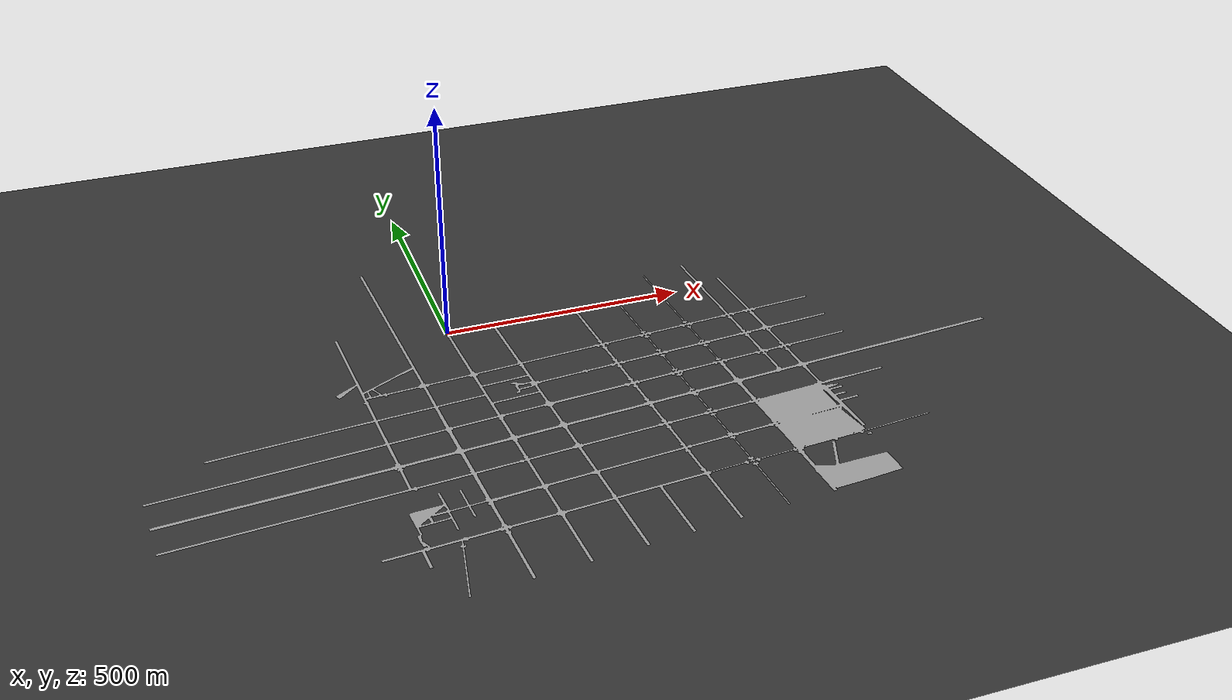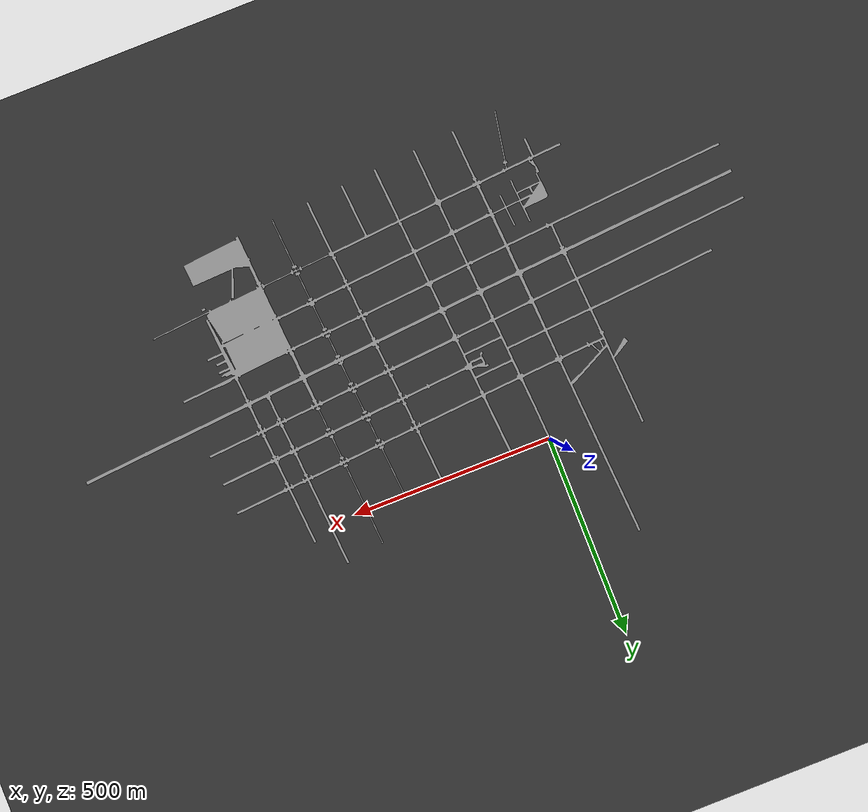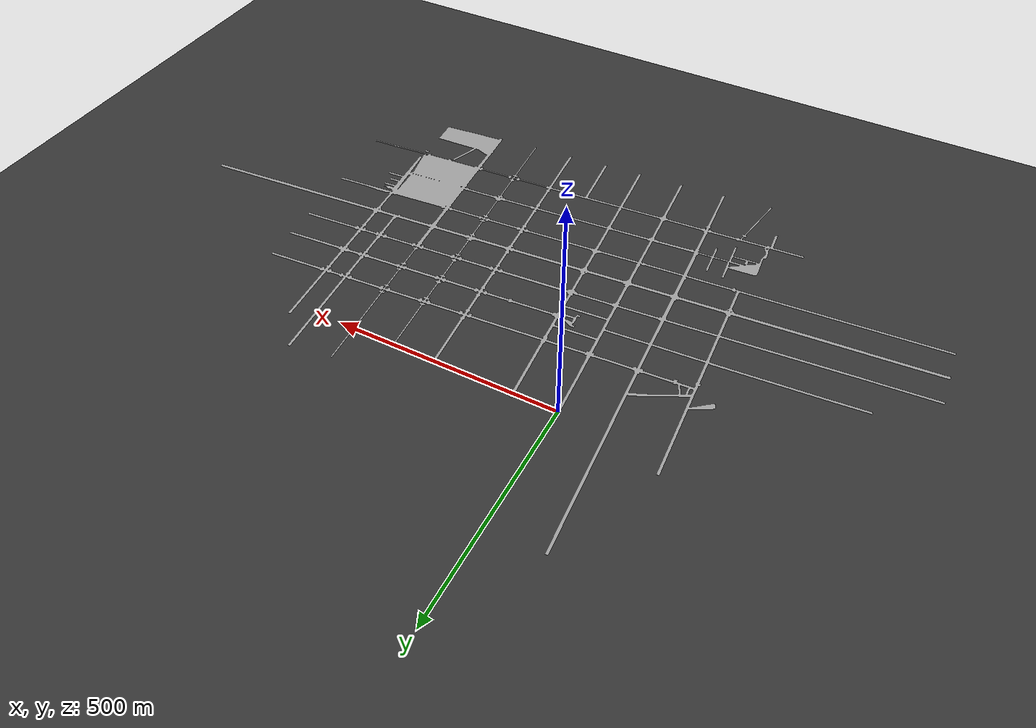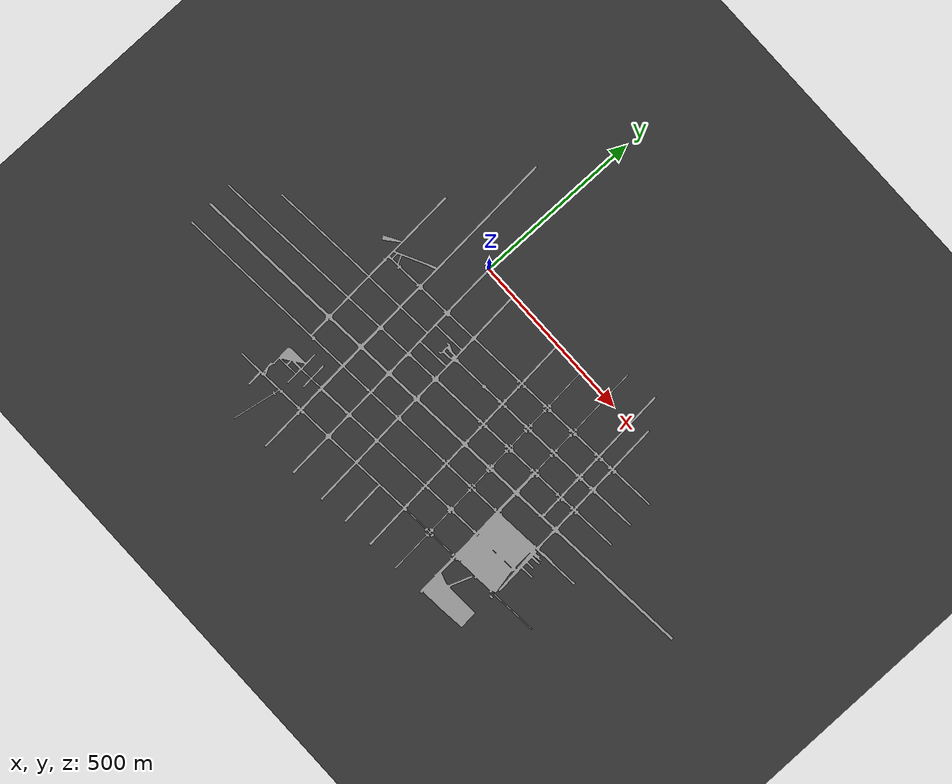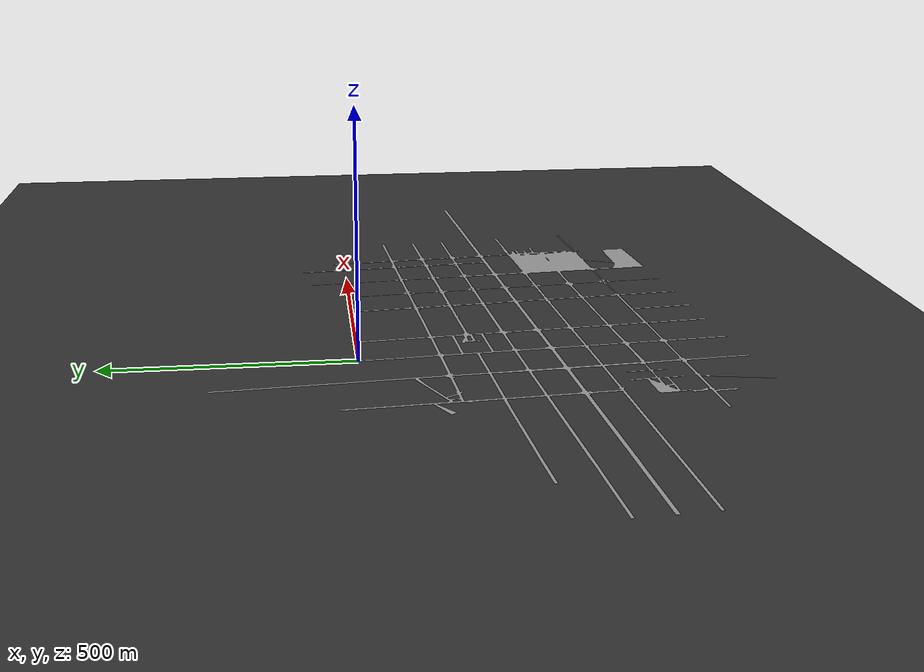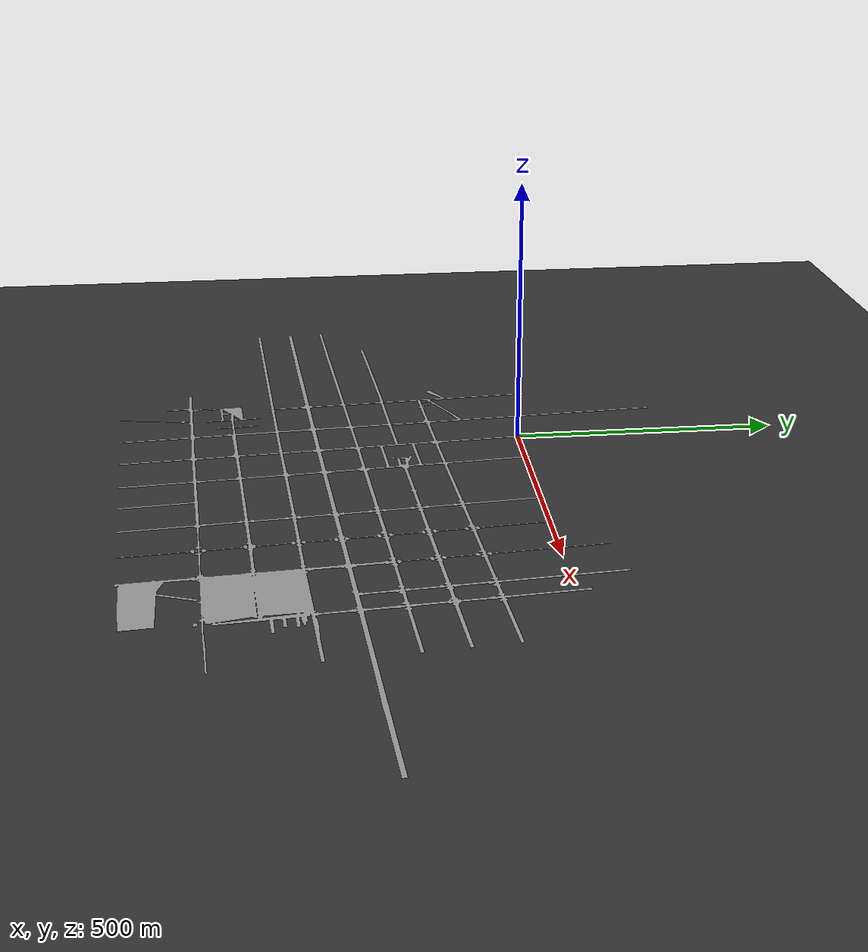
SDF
<?xml version="1.6"?>
<sdf version="1.8">
  <world name="bari_world">

    <gravity>0 0 -9.81</gravity>

    <scene>
      <ambient>0.7 0.7 0.7 1</ambient>
      <background>0.9 0.9 0.9 1</background>
    </scene>

    <light name="sun" type="directional">
      <pose>0 0 50 0 0 0</pose>
      <diffuse>1 1 1 1</diffuse>
      <specular>0.1 0.1 0.1 1</specular>
      <attenuation>
        <range>500</range>
        <constant>1.0</constant>
        <linear>0.01</linear>
        <quadratic>0.001</quadratic>
      </attenuation>
      <direction>-0.5 0.5 -1</direction>
    </light>

    <gui>
      <camera name="default">
        <pose>0 0 80 0 0 0</pose>
      </camera>
    </gui>

    <include>
      <uri>model://roads_mesh</uri>
    </include>

    <model name="ground_plane">
      <static>true</static>
      <pose>0 0 0 0 0 0</pose>
      <link name="link">
        <collision name="collision">
          <geometry>
            <plane>
              <normal>0 0 1</normal>
              <size>2000 2000</size>
            </plane>
          </geometry>
        </collision>
        <visual name="visual">
          <geometry>
            <plane>
              <normal>0 0 1</normal>
              <size>2000 2000</size>
            </plane>
          </geometry>
          <material>
            <diffuse>0.2 0.2 0.2 1</diffuse>
            <ambient>0.1 0.1 0.1 1</ambient>
          </material>
        </visual>
      </link>
    </model>

  </world>
</sdf>

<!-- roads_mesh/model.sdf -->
<sdf version="1.8">
  <model name="roads_mesh">
    <static>true</static>
    <link name="road_link">
      <visual name="vis">
        <geometry>
          <mesh>
            <uri>model://roads_mesh/meshes/roads_mesh.obj</uri>
          </mesh>
        </geometry>
        <material>
          <diffuse>0.6 0.6 0.6 1</diffuse>
          <ambient>0.4 0.4 0.4 1</ambient>
        </material>
      </visual>
      <collision name="col">
        <geometry>
          <mesh>
            <uri>model://roads_mesh/meshes/roads_mesh.obj</uri>
          </mesh>
        </geometry>
      </collision>
    </link>
  </model>
</sdf>
